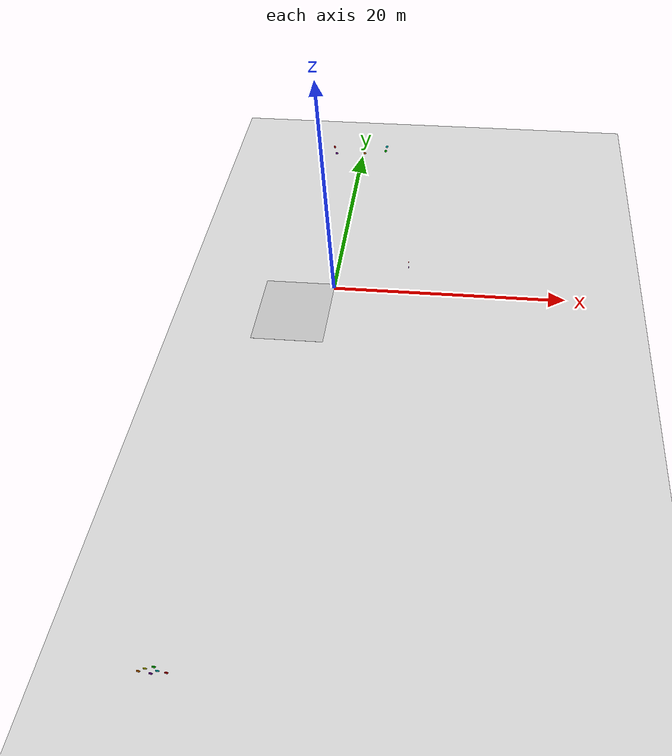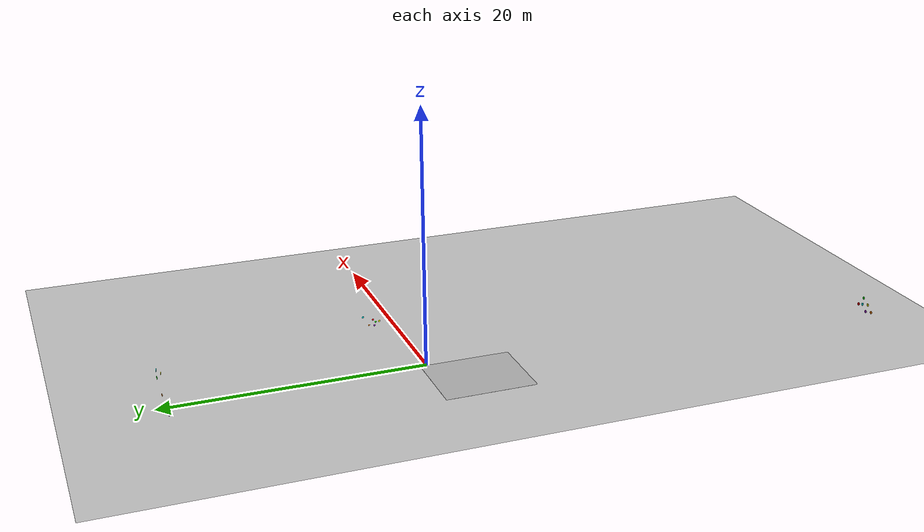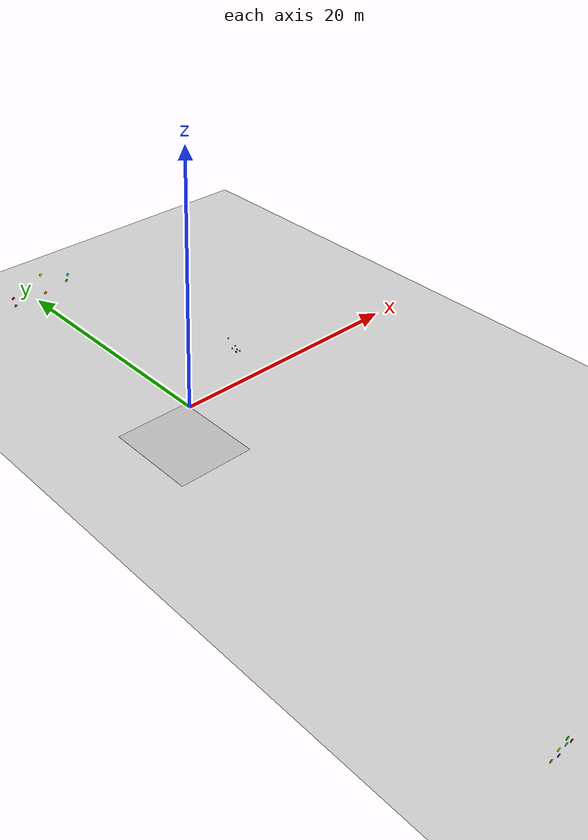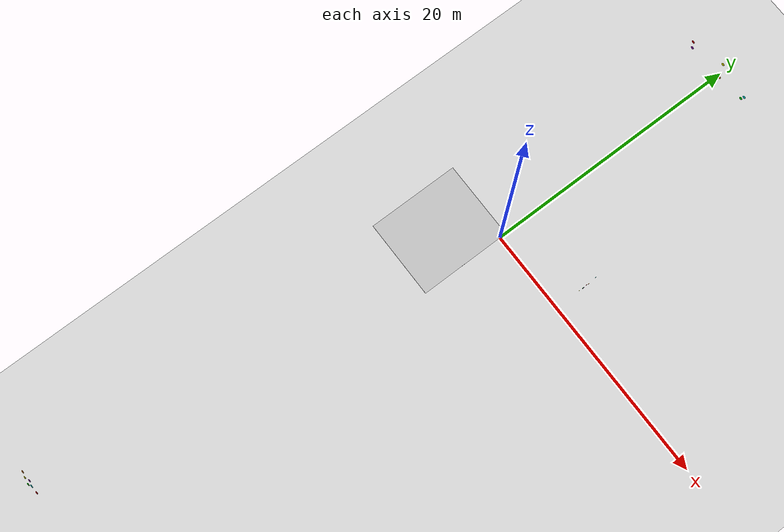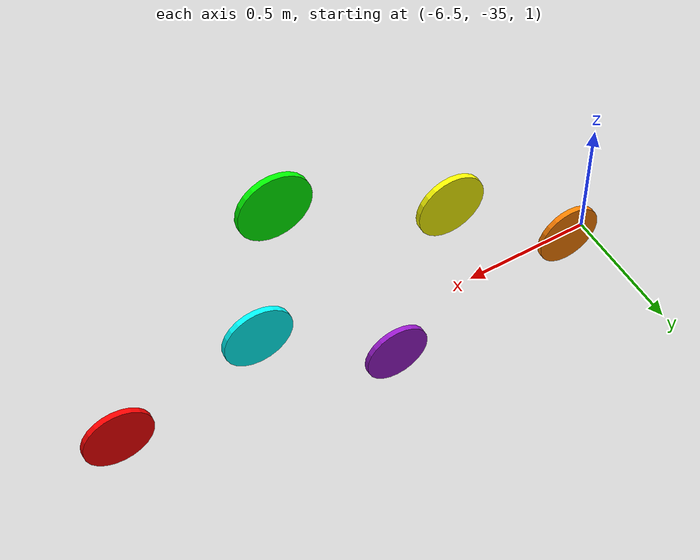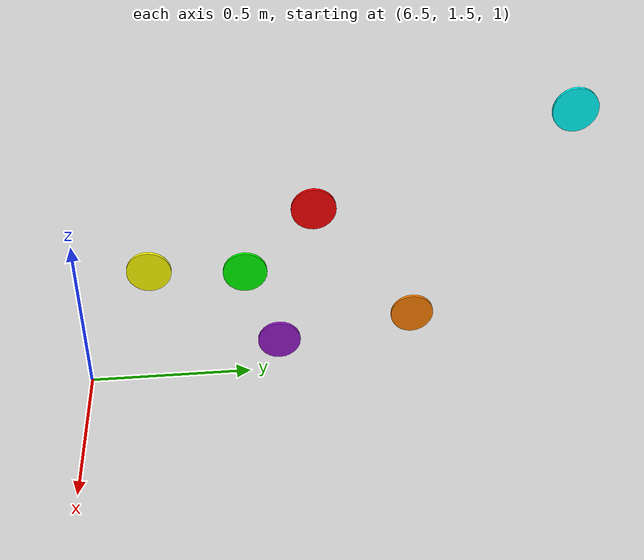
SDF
<sdf version="1.6">
 <world name="world">
  <gravity>0 0 -9.8</gravity>
  <physics default="0" name="default_physics" type="ode">
   <max_step_size>0.001</max_step_size>
   <real_time_factor>1</real_time_factor>
   <real_time_update_rate>1000</real_time_update_rate>
  </physics>
  <scene><ambient>0.6 0.6 0.6 1</ambient><background>0.4 0.4 0.4 1</background><shadows>false</shadows></scene>
  <include><uri>model://sun</uri></include>
  <include><uri>model://ground_plane</uri><pose>0 0 -0.1 0 -0 0</pose></include>
  <light name="room_point_light" type="point">
   <pose>-2 -9 2.6 0 0 0</pose>
   <diffuse>0.8 0.8 0.8 1</diffuse>
   <specular>0.05 0.05 0.05 1</specular>
   <attenuation>
    <range>6</range>
    <constant>0.9</constant>
    <linear>0.07</linear>
    <quadratic>0.01</quadratic>
   </attenuation>
   <cast_shadows>false</cast_shadows>
  </light>
  <model name="terrazzo_floor_panel">
   <static>true</static>
   <link name="link">
    <visual name="visual">
     <pose>-3 -3 0.002 0 0 0</pose>
     <geometry><box><size>6 7 0.004</size></box></geometry>
     <material>
      <script>
       <uri>model://my_textures/materials/scripts</uri>
       <uri>model://my_textures/materials/textures</uri>
       <name>MyTextures/TerrazzoFloor</name>
      </script>
     </material>
    </visual>
    <collision name="collision">
     <pose>0 0 0.002 0 0 0</pose>
     <geometry><box><size>3 3 0.004</size></box></geometry>
    </collision>
   </link>
  </model>
  <visual name="wall_visual">
   <pose>0 0 1.2 0 0 0</pose>
   <geometry><box><size>3.0 0.01 2.4</size></box></geometry>
   <material>
    <script>
     <uri>model://my_textures/materials/scripts</uri>
     <uri>model://my_textures/materials/textures</uri>
     <name>MyTextures/BrickWall</name>
    </script>
   </material>
  </visual>
  <model name="da3_marker_red">
   <static>true</static>
   <pose>6.35 2.22 1.50 0 1.57079632679 0</pose>
   <link name="link">
    <visual name="visual">
     <geometry><cylinder><radius>0.07</radius><length>0.01</length></cylinder></geometry>
     <material><ambient>1 0 0 1</ambient><diffuse>1 0 0 1</diffuse></material>
    </visual>
   </link>
  </model>
  <model name="da3_marker_purple">
   <static>true</static>
   <pose>6.35 2.1 1.0 0 1.57079632679 0</pose>
   <link name="link">
    <visual name="visual">
     <geometry><cylinder><radius>0.07</radius><length>0.01</length></cylinder></geometry>
     <material><ambient>0.6 0.1 0.8 1</ambient><diffuse>0.6 0.1 0.8 1</diffuse></material>
    </visual>
   </link>
  </model>
  <model name="da3_marker_green">
   <static>true</static>
   <pose>6.35 2.0 1.28 0 1.57079632679 0</pose>
   <link name="link">
    <visual name="visual">
     <geometry><cylinder><radius>0.07</radius><length>0.01</length></cylinder></geometry>
     <material><ambient>0 1 0 1</ambient><diffuse>0 1 0 1</diffuse></material>
    </visual>
   </link>
  </model>
  <model name="da3_marker_cyan">
   <static>true</static>
   <pose>6.35 3.0 1.8 0 1.57079632679 0</pose>
   <link name="link">
    <visual name="visual">
     <geometry><cylinder><radius>0.07</radius><length>0.01</length></cylinder></geometry>
     <material><ambient>0 1 1 1</ambient><diffuse>0 1 1 1</diffuse></material>
    </visual>
   </link>
  </model>
  <model name="da3_marker_yellow">
   <static>true</static>
   <pose>6.35 1.7 1.3 0 1.57079632679 0</pose>
   <link name="link">
    <visual name="visual">
     <geometry><cylinder><radius>0.07</radius><length>0.01</length></cylinder></geometry>
     <material><ambient>1 1 0 1</ambient><diffuse>1 1 0 1</diffuse></material>
    </visual>
   </link>
  </model>
  <model name="da3_marker_orange">
   <static>true</static>
   <pose>6.35 2.54 1.08 0 1.57079632679 0</pose>
   <link name="link">
    <visual name="visual">
     <geometry><cylinder><radius>0.07</radius><length>0.01</length></cylinder></geometry>
     <material><ambient>1 0.5 0 1</ambient><diffuse>1 0.5 0 1</diffuse></material>
    </visual>
   </link>
  </model>
  <model name="da3_elev_marker_red">
   <static>true</static>
   <pose>-2.70 19.35 1.50 1.57079632679 0 0</pose>
   <link name="link">
    <visual name="visual">
     <geometry><cylinder><radius>0.12</radius><length>0.02</length></cylinder></geometry>
     <material><ambient>1 0 0 1</ambient><diffuse>1 0 0 1</diffuse></material>
    </visual>
   </link>
  </model>
  <model name="da3_elev_marker_purple">
   <static>true</static>
   <pose>-2.55 19.35 0.75 1.57079632679 0 0</pose>
   <link name="link">
    <visual name="visual">
     <geometry><cylinder><radius>0.12</radius><length>0.02</length></cylinder></geometry>
     <material><ambient>0.6 0.1 0.8 1</ambient><diffuse>0.6 0.1 0.8 1</diffuse></material>
    </visual>
   </link>
  </model>
  <model name="da3_elev_marker_green">
   <static>true</static>
   <pose>2.5 19.35 1.28 1.57079632679 0 0</pose>
   <link name="link">
    <visual name="visual">
     <geometry><cylinder><radius>0.12</radius><length>0.02</length></cylinder></geometry>
     <material><ambient>0 1 0 1</ambient><diffuse>0 1 0 1</diffuse></material>
    </visual>
   </link>
  </model>
  <model name="da3_elev_marker_cyan">
   <static>true</static>
   <pose>2.65 19.35 1.80 1.57079632679 0 0</pose>
   <link name="link">
    <visual name="visual">
     <geometry><cylinder><radius>0.12</radius><length>0.02</length></cylinder></geometry>
     <material><ambient>0 1 1 1</ambient><diffuse>0 1 1 1</diffuse></material>
    </visual>
   </link>
  </model>
  <model name="da3_elev_marker_yellow">
   <static>true</static>
   <pose>0.05 19.35 2.70 1.57079632679 0 0</pose>
   <link name="link">
    <visual name="visual">
     <geometry><cylinder><radius>0.12</radius><length>0.02</length></cylinder></geometry>
     <material><ambient>1 1 0 1</ambient><diffuse>1 1 0 1</diffuse></material>
    </visual>
   </link>
  </model>
  <model name="da3_elev_marker_orange">
   <static>true</static>
   <pose>0.35 19.35 0.90 1.57079632679 0 0</pose>
   <link name="link">
    <visual name="visual">
     <geometry><cylinder><radius>0.12</radius><length>0.02</length></cylinder></geometry>
     <material><ambient>1 0.5 0 1</ambient><diffuse>1 0.5 0 1</diffuse></material>
    </visual>
   </link>
  </model>
  <model name="da3_portrait_marker_red">
   <static>true</static>
   <pose>-4.56141 -34.8 1.38136 1.57079632679 0 0</pose>
   <link name="link">
    <visual name="visual">
     <geometry><cylinder><radius>0.12</radius><length>0.02</length></cylinder></geometry>
     <material><ambient>1 0 0 1</ambient><diffuse>1 0 0 1</diffuse></material>
    </visual>
   </link>
  </model>
  <model name="da3_portrait_marker_purple">
   <static>true</static>
   <pose>-5.56141 -34.8 1.10 1.57079632679 0 0</pose>
   <link name="link">
    <visual name="visual">
     <geometry><cylinder><radius>0.12</radius><length>0.02</length></cylinder></geometry>
     <material><ambient>0.6 0.1 0.8 1</ambient><diffuse>0.6 0.1 0.8 1</diffuse></material>
    </visual>
   </link>
  </model>
  <model name="da3_portrait_marker_green">
   <static>true</static>
   <pose>-5.16141 -34.8 2.1 1.57079632679 0 0</pose>
   <link name="link">
    <visual name="visual">
     <geometry><cylinder><radius>0.12</radius><length>0.02</length></cylinder></geometry>
     <material><ambient>0 1 0 1</ambient><diffuse>0 1 0 1</diffuse></material>
    </visual>
   </link>
  </model>
  <model name="da3_portrait_marker_cyan">
   <static>true</static>
   <pose>-5.06141 -34.8 1.55 1.57079632679 0 0</pose>
   <link name="link">
    <visual name="visual">
     <geometry><cylinder><radius>0.12</radius><length>0.02</length></cylinder></geometry>
     <material><ambient>0 1 1 1</ambient><diffuse>0 1 1 1</diffuse></material>
    </visual>
   </link>
  </model>
  <model name="da3_portrait_marker_yellow">
   <static>true</static>
   <pose>-5.76141 -34.8 1.75 1.57079632679 0 0</pose>
   <link name="link">
    <visual name="visual">
     <geometry><cylinder><radius>0.12</radius><length>0.02</length></cylinder></geometry>
     <material><ambient>1 1 0 1</ambient><diffuse>1 1 0 1</diffuse></material>
    </visual>
   </link>
  </model>
  <model name="da3_portrait_marker_orange">
   <static>true</static>
   <pose>-6.26141 -34.8 1.3 1.57079632679 0 0</pose>
   <link name="link">
    <visual name="visual">
     <geometry><cylinder><radius>0.12</radius><length>0.02</length></cylinder></geometry>
     <material><ambient>1 0.5 0 1</ambient><diffuse>1 0.5 0 1</diffuse></material>
    </visual>
   </link>
  </model>
 </world>
</sdf>
